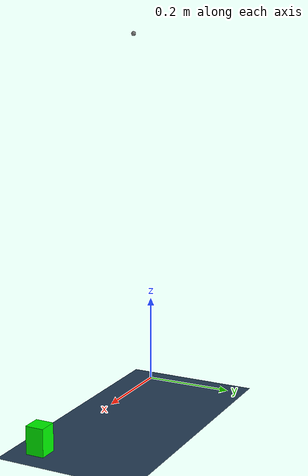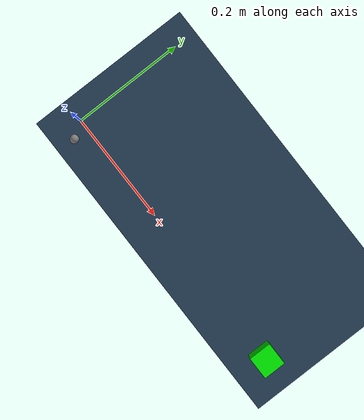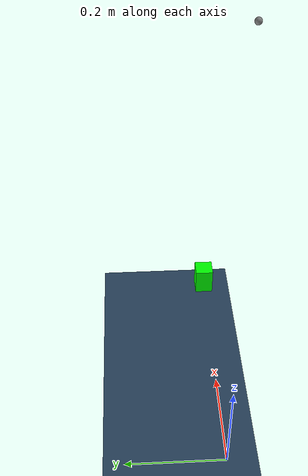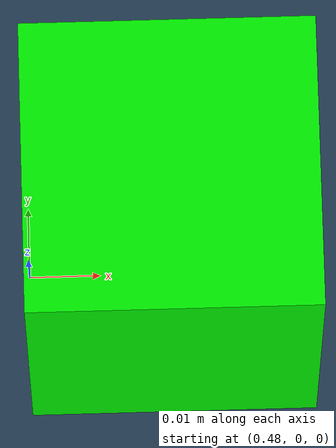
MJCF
<mujoco model="panda scene">
    <compiler angle="radian" autolimits="true"/>

    <default>
        <default class="panda">
            <material specular="0.5" shininess="0.25"/>
            <joint armature="0.1" damping="1" axis="0 0 1" range="-2.8973 2.8973"/>
            <general dyntype="none" biastype="affine" ctrlrange="-2.8973 2.8973" forcerange="-87 87"/>
            <position forcerange="-100 100"/>
            <default class="finger">
                <joint axis="0 1 0" type="slide" range="0 0.04"/>
            </default>

            <default class="visual">
                <geom type="mesh" contype="0" conaffinity="0" group="2"/>
            </default>
            <default class="collision">
                <geom group="3" type="mesh" contype="0" conaffinity="0"/>
                <default class="primitive_collision">
                    <geom group="3" type="box" contype="0" conaffinity="0"
                          condim="3" solimp="0.99 0.995 0.01" solref="0.01 1" friction="1 0.005 0.0001"/>
                    <default class="fingertip_pad_collision_1">
                        <geom type="box" size="0.011 0.0075 0.01" pos="0 0.0185 0.011"/>
                    </default>
                    <default class="fingertip_pad_collision_2">
                        <geom type="box" size="0.011 0.0044 0.0019" pos="0 0.0068 0.0022"/>
                    </default>
                    <default class="fingertip_pad_collision_3">
                        <geom type="box" size="0.00875 0.0035 0.01175" pos="0 0.0159 0.02835" quat="1 0.25 0 0"/>
                    </default>
                    <default class="fingertip_pad_collision_4">
                        <geom type="box" size="0.00875 0.0076 0.00825" pos="0 0.00758 0.04525" conaffinity="3"/>
                    </default>
                </default>
            </default>
        </default>
    </default>

    <worldbody>
        <light name="top" pos="0 0 2" mode="trackcom"/>
        <body name="link0" childclass="panda">
            <inertial mass="0.629769" pos="-0.041018 -0.00014 0.049974"
                      fullinertia="0.00315 0.00388 0.004285 8.2904e-7 0.00015 8.2299e-6"/>
            <body name="link1" pos="0 0 0.333">
                <inertial mass="4.970684" pos="0.003875 0.002081 -0.04762"
                          fullinertia="0.70337 0.70661 0.0091170 -0.00013900 0.0067720 0.019169"/>
                <joint name="joint1" damping="40"/>
                <body name="link2" quat="1 -1 0 0">
                    <inertial mass="0.646926" pos="-0.003141 -0.02872 0.003495"
                              fullinertia="0.0079620 2.8110e-2 2.5995e-2 -3.925e-3 1.0254e-2 7.04e-4"/>
                    <joint name="joint2" range="-1.7628 1.7628" damping="40"/>
                    <body name="link3" pos="0 -0.316 0" quat="1 1 0 0">
                        <joint name="joint3" damping="40"/>
                        <inertial mass="3.228604" pos="2.7518e-2 3.9252e-2 -6.6502e-2"
                                  fullinertia="3.7242e-2 3.6155e-2 1.083e-2 -4.761e-3 -1.1396e-2 -1.2805e-2"/>
                        <body name="link4" pos="0.0825 0 0" quat="1 1 0 0">
                            <inertial mass="3.587895" pos="-5.317e-2 1.04419e-1 2.7454e-2"
                                      fullinertia="2.5853e-2 1.9552e-2 2.8323e-2 7.796e-3 -1.332e-3 8.641e-3"/>
                            <joint name="joint4" range="-3.0718 -0.0698" damping="40"/>
                            <body name="link5" pos="-0.0825 0.384 0" quat="1 -1 0 0">
                                <inertial mass="1.225946" pos="-1.1953e-2 4.1065e-2 -3.8437e-2"
                                          fullinertia="3.5549e-2 2.9474e-2 8.627e-3 -2.117e-3 -4.037e-3 2.29e-4"/>
                                <joint name="joint5" damping="2"/>
                                <body name="link6" quat="1 1 0 0">
                                    <inertial mass="1.666555" pos="6.0149e-2 -1.4117e-2 -1.0517e-2"
                                              fullinertia="1.964e-3 4.354e-3 5.433e-3 1.09e-4 -1.158e-3 3.41e-4"/>
                                    <joint name="joint6" range="-0.0175 3.7525" damping="2"/>
                                    <body name="link7" pos="0.088 0 0" quat="1 1 0 0">
                                        <inertial mass="7.35522e-01" pos="1.0517e-2 -4.252e-3 6.1597e-2"
                                                  fullinertia="1.2516e-2 1.0027e-2 4.815e-3 -4.28e-4 -1.196e-3 -7.41e-4"/>
                                        <joint name="joint7" damping="2"/>
                                        <body name="hand" pos="0 0 0.107" quat="0.9238795 0 0 -0.3826834">
                                            <inertial mass="0.73" pos="-0.01 0 0.03" diaginertia="0.001 0.0025 0.0017"/>
                                            <site name="gripper" pos="0 0 0.1"/>
                                            <body name="left_finger" pos="0 0 0.0584">
                                                <inertial mass="0.015" pos="0 0 0"
                                                          diaginertia="2.375e-6 2.375e-6 7.5e-7"/>
                                                <joint name="finger_joint1" class="finger" damping="10"/>
                                            </body>
                                            <body name="right_finger" pos="0 0 0.0584" quat="0 0 0 1">
                                                <inertial mass="0.015" pos="0 0 0"
                                                          diaginertia="2.375e-6 2.375e-6 7.5e-7"/>
                                                <joint name="finger_joint2" class="finger" damping="10"/>
                                            </body>
                                        </body>
                                    </body>
                                </body>
                            </body>
                        </body>
                    </body>
                </body>
            </body>
        </body>
    </worldbody>

    <tendon>
        <fixed name="finger">
          <joint joint="finger_joint1" coef="0.5"/>
          <joint joint="finger_joint2" coef="0.5"/>
        </fixed>
    </tendon>

    <equality>
        <joint joint1="finger_joint1" joint2="finger_joint2" solimp="0.95 0.99 0.001" solref="0.005 1"/>
    </equality>

    <actuator>
        <position class="panda" name="actuator1" joint="joint1" kp="1000" kv="20"
                  ctrlrange="-2.8973 2.8973"/>
        <position class="panda" name="actuator2" joint="joint2" kp="1000" kv="20"
                  ctrlrange="-1.7628 1.7628"/>
        <position class="panda" name="actuator3" joint="joint3" kp="750" kv="4"
                  ctrlrange="-2.8973 2.8973"/>
        <position class="panda" name="actuator4" joint="joint4" kp="750" kv="4"
                  ctrlrange="-3.0718 -0.0698"/>
        <position class="panda" name="actuator5" joint="joint5" kp="300" kv="2"
                  forcerange="-12 12" ctrlrange="-2.8973 2.8973"/>
        <position class="panda" name="actuator6" joint="joint6" kp="300" kv="2" forcerange="-12 12"
                  ctrlrange="-0.0175 3.7525"/>
        <position class="panda" name="actuator7" joint="joint7" kp="300" kv="2" forcerange="-12 12"/>
        <general class="panda" name="actuator8" joint="finger_joint1"
                 ctrlrange="0 0.04" gainprm="350 0 0" biasprm="0 -350 -10" forcerange="-200 200"/>
    </actuator>

    <option timestep="0.005" iterations="5" ls_iterations="8" integrator="implicitfast">
        <flag eulerdamp="disable"/>
    </option>

    <custom>
        <numeric data="12" name="max_contact_points"/>
    </custom>

    <visual>
        <headlight diffuse="0.6 0.6 0.6" ambient="0.3 0.3 0.3" specular="0 0 0"/>
        <rgba haze="0.15 0.25 0.35 1"/>
        <global azimuth="120" elevation="-20"/>
        <scale contactwidth="0.075" contactheight="0.025" forcewidth="0.05" com="0.05" framewidth="0.01"
               framelength="0.2"/>
    </visual>

    <asset>
        <texture type="skybox" builtin="gradient" rgb1="0.3 0.5 0.7" rgb2="0 0 0" width="512" height="3072"/>
        <texture type="2d" name="groundplane" builtin="checker" mark="edge" rgb1="0.2 0.3 0.4" rgb2="0.1 0.2 0.3"
                 markrgb="0.8 0.8 0.8" width="300" height="300"/>
        <material name="groundplane" texture="groundplane" texuniform="true" texrepeat="5 5" reflectance="0.2"/>
    </asset>

    <worldbody>
        <light pos="0 0 1.5" dir="0 0 -1" directional="true"/>
        <body name="floor">
            <geom name="floor" size="0.0 0.0 0.05" type="plane" material="groundplane" contype="1"/>
        </body>
    </worldbody>

    <worldbody>
        <body name="box" pos="0.5 0 0.03">
            <freejoint/>
            <geom type="box" name="box" size="0.02 0.02 0.03" condim="3"
                  friction="1 .03 .003" rgba="0 1 0 1" contype="2" conaffinity="1" solref="0.01 1"/>
        </body>
    </worldbody>

    <keyframe>
        <key name="home"
             qpos="0 0.3 0 -1.57079 0 2.0 -0.7853 0.04 0.04 0.7 0 0.03 1 0 0 0"
             ctrl="0 0.3 0 -1.57079 0 2.0 -0.7853 0.04"/>
        <key name="pickup"
             qpos="0.2897 0.50732 -0.140016 -2.176 -0.0310497 2.51592 -0.49251 0.04 0.0399982 0.511684 0.0645413 0.0298665 0.665781 2.76848e-17 -2.27527e-17 -0.746147"
             ctrl="0.2897 0.423 -0.144392 -2.13105 -0.0291743 2.52586 -0.492492 0.04"/>
        <key name="pickup1"
             qpos='0.2897 0.496673 -0.142836 -2.14746 -0.0295746 2.52378 -0.492496 0.04 0.0399988 0.529553 0.0731702 0.0299388 0.94209 8.84613e-06 -4.97524e-06 -0.335361'
             ctrl="0.2897 0.458 -0.144392 -2.13105 -0.0291743 2.52586 -0.492492 0.04"/>
    </keyframe>
</mujoco>
